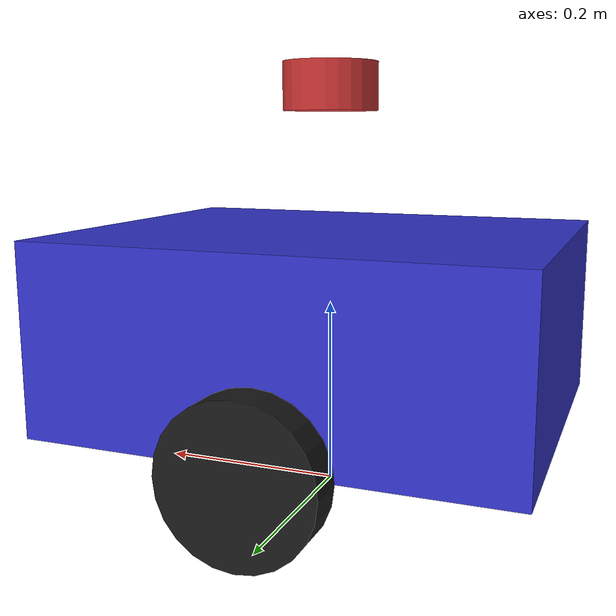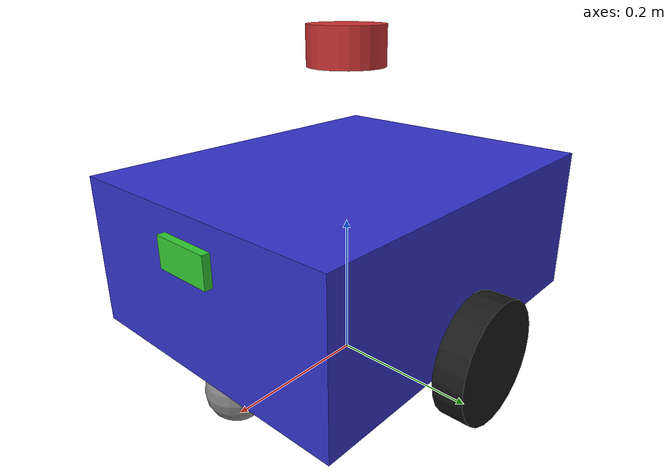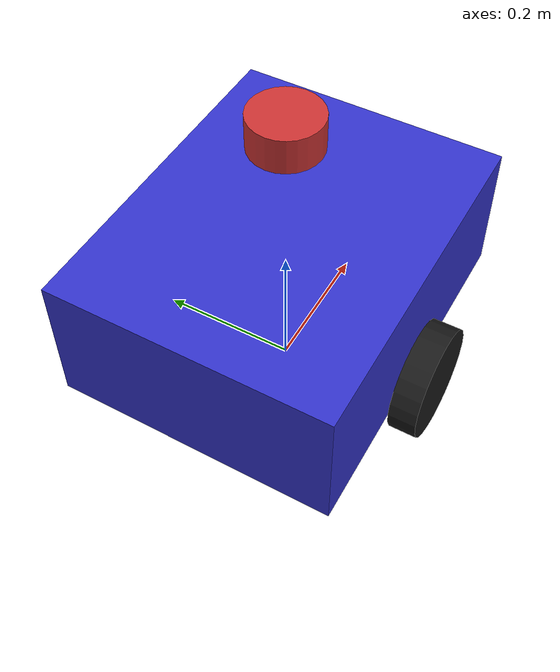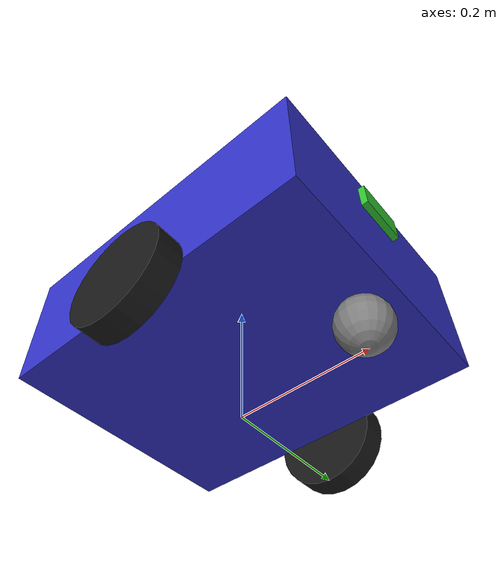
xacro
<?xml version="1.0"?>
<!--
  Digital Twin Robot URDF
  Simple differential drive robot for warehouse navigation
-->
<robot name="dt_robot" xmlns:xacro="http://www.ros.org/wiki/xacro">

  <!-- Properties -->
  <xacro:property name="base_width" value="0.4"/>
  <xacro:property name="base_length" value="0.5"/>
  <xacro:property name="base_height" value="0.2"/>
  <xacro:property name="wheel_radius" value="0.08"/>
  <xacro:property name="wheel_width" value="0.04"/>
  <xacro:property name="wheel_separation" value="0.44"/>
  <xacro:property name="lidar_height" value="0.15"/>

  <!-- Base Footprint -->
  <link name="base_footprint"/>

  <!-- Base Link -->
  <link name="base_link">
    <visual>
      <geometry>
        <box size="${base_length} ${base_width} ${base_height}"/>
      </geometry>
      <material name="blue">
        <color rgba="0.2 0.2 0.8 1.0"/>
      </material>
    </visual>
    <collision>
      <geometry>
        <box size="${base_length} ${base_width} ${base_height}"/>
      </geometry>
    </collision>
    <inertial>
      <mass value="10.0"/>
      <inertia ixx="0.5" ixy="0.0" ixz="0.0"
               iyy="0.5" iyz="0.0" izz="0.5"/>
    </inertial>
  </link>

  <joint name="base_footprint_joint" type="fixed">
    <parent link="base_footprint"/>
    <child link="base_link"/>
    <origin xyz="0 0 ${wheel_radius + base_height/2}" rpy="0 0 0"/>
  </joint>

  <!-- Left Wheel -->
  <link name="left_wheel">
    <visual>
      <geometry>
        <cylinder radius="${wheel_radius}" length="${wheel_width}"/>
      </geometry>
      <material name="black">
        <color rgba="0.1 0.1 0.1 1.0"/>
      </material>
    </visual>
    <collision>
      <geometry>
        <cylinder radius="${wheel_radius}" length="${wheel_width}"/>
      </geometry>
    </collision>
    <inertial>
      <mass value="1.0"/>
      <inertia ixx="0.01" ixy="0.0" ixz="0.0"
               iyy="0.01" iyz="0.0" izz="0.01"/>
    </inertial>
  </link>

  <joint name="left_wheel_joint" type="continuous">
    <parent link="base_link"/>
    <child link="left_wheel"/>
    <origin xyz="0 ${wheel_separation/2} ${-base_height/2}" rpy="${-pi/2} 0 0"/>
    <axis xyz="0 0 1"/>
  </joint>

  <!-- Right Wheel -->
  <link name="right_wheel">
    <visual>
      <geometry>
        <cylinder radius="${wheel_radius}" length="${wheel_width}"/>
      </geometry>
      <material name="black">
        <color rgba="0.1 0.1 0.1 1.0"/>
      </material>
    </visual>
    <collision>
      <geometry>
        <cylinder radius="${wheel_radius}" length="${wheel_width}"/>
      </geometry>
    </collision>
    <inertial>
      <mass value="1.0"/>
      <inertia ixx="0.01" ixy="0.0" ixz="0.0"
               iyy="0.01" iyz="0.0" izz="0.01"/>
    </inertial>
  </link>

  <joint name="right_wheel_joint" type="continuous">
    <parent link="base_link"/>
    <child link="right_wheel"/>
    <origin xyz="0 ${-wheel_separation/2} ${-base_height/2}" rpy="${-pi/2} 0 0"/>
    <axis xyz="0 0 1"/>
  </joint>

  <!-- Caster Wheel (Front) -->
  <link name="caster_wheel">
    <visual>
      <geometry>
        <sphere radius="${wheel_radius/2}"/>
      </geometry>
      <material name="gray">
        <color rgba="0.5 0.5 0.5 1.0"/>
      </material>
    </visual>
    <collision>
      <geometry>
        <sphere radius="${wheel_radius/2}"/>
      </geometry>
    </collision>
    <inertial>
      <mass value="0.5"/>
      <inertia ixx="0.001" ixy="0.0" ixz="0.0"
               iyy="0.001" iyz="0.0" izz="0.001"/>
    </inertial>
  </link>

  <joint name="caster_wheel_joint" type="fixed">
    <parent link="base_link"/>
    <child link="caster_wheel"/>
    <origin xyz="${base_length/2 - 0.05} 0 ${-base_height/2 - wheel_radius/2}" rpy="0 0 0"/>
  </joint>

  <!-- Lidar -->
  <link name="lidar_link">
    <visual>
      <geometry>
        <cylinder radius="0.05" length="0.05"/>
      </geometry>
      <material name="red">
        <color rgba="0.8 0.2 0.2 1.0"/>
      </material>
    </visual>
    <collision>
      <geometry>
        <cylinder radius="0.05" length="0.05"/>
      </geometry>
    </collision>
    <inertial>
      <mass value="0.2"/>
      <inertia ixx="0.001" ixy="0.0" ixz="0.0"
               iyy="0.001" iyz="0.0" izz="0.001"/>
    </inertial>
  </link>

  <joint name="lidar_joint" type="fixed">
    <parent link="base_link"/>
    <child link="lidar_link"/>
    <origin xyz="0 0 ${base_height/2 + lidar_height}" rpy="0 0 0"/>
  </joint>

  <!-- Camera -->
  <link name="camera_link">
    <visual>
      <geometry>
        <box size="0.02 0.08 0.04"/>
      </geometry>
      <material name="green">
        <color rgba="0.2 0.8 0.2 1.0"/>
      </material>
    </visual>
    <collision>
      <geometry>
        <box size="0.02 0.08 0.04"/>
      </geometry>
    </collision>
    <inertial>
      <mass value="0.1"/>
      <inertia ixx="0.0001" ixy="0.0" ixz="0.0"
               iyy="0.0001" iyz="0.0" izz="0.0001"/>
    </inertial>
  </link>

  <joint name="camera_joint" type="fixed">
    <parent link="base_link"/>
    <child link="camera_link"/>
    <origin xyz="${base_length/2} 0 ${base_height/4}" rpy="0 0 0"/>
  </joint>

  <link name="camera_optical_frame"/>

  <joint name="camera_optical_joint" type="fixed">
    <parent link="camera_link"/>
    <child link="camera_optical_frame"/>
    <origin xyz="0 0 0" rpy="${-pi/2} 0 ${-pi/2}"/>
  </joint>

</robot>
